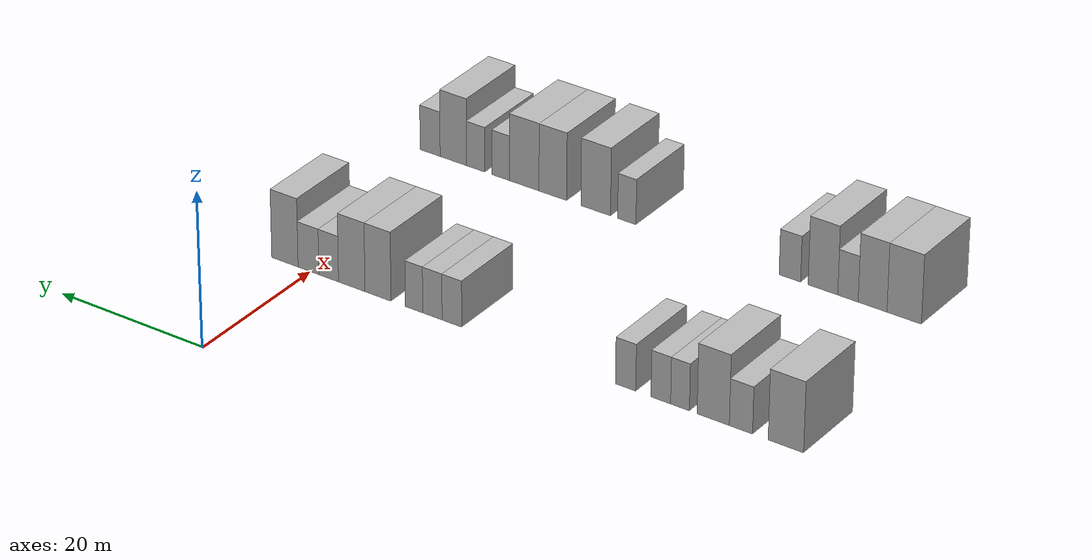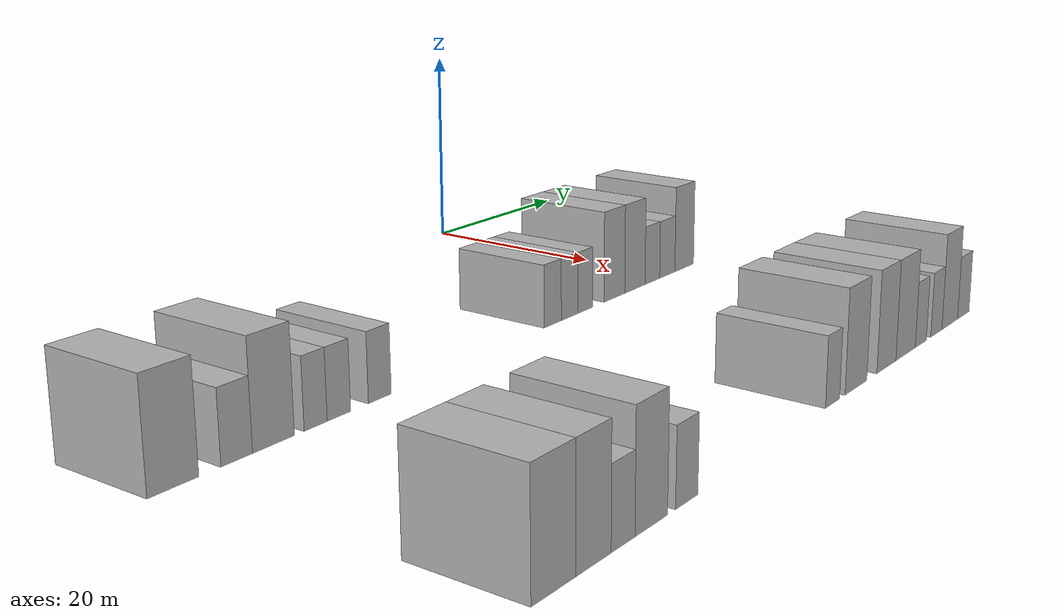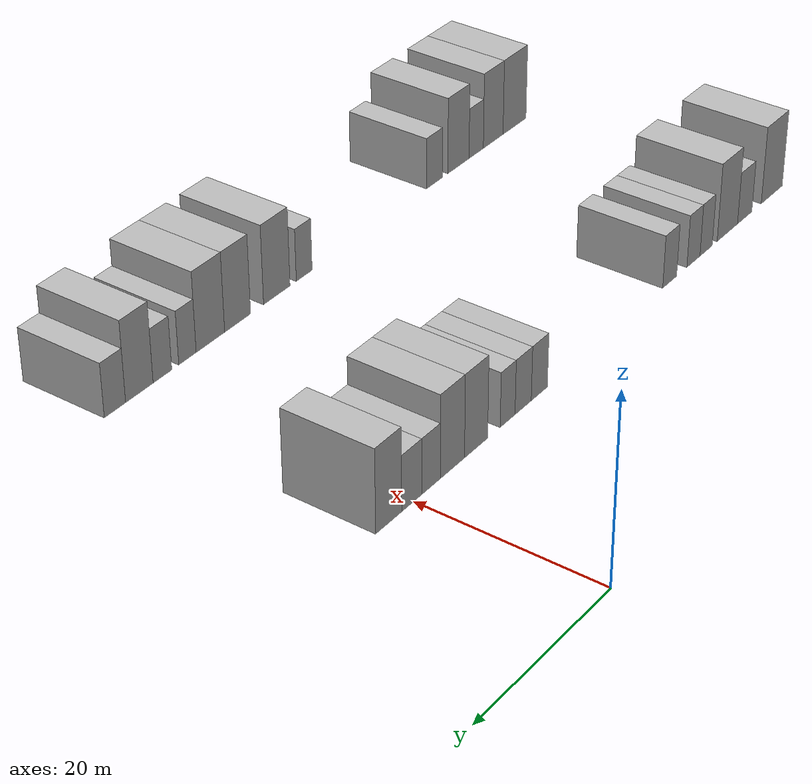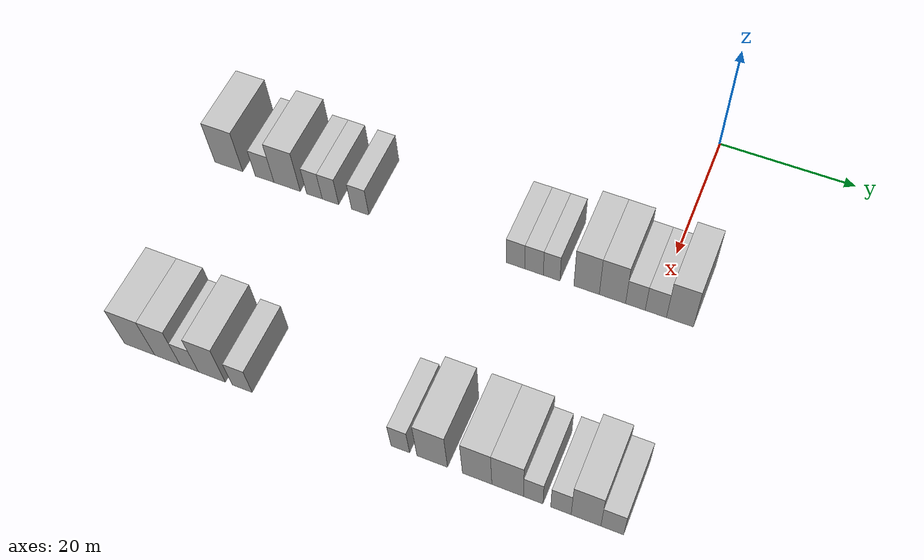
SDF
<sdf version="1.6">
 <world name="default">
  <model name="building_42">
   <static>1</static>
   <pose>25.0000 -63.8648 0 0.000000 0.000000 0.000000</pose>
   <link name="link">
    <pose>0 0 4.50 0 0 0</pose>
    <collision name="collision"><geometry><box><size>10.0000 4.4976 9.0000</size></box></geometry></collision>
    <visual name="visual">
     <cast_shadows>0</cast_shadows>
     <geometry><box><size>10.0000 4.4976 9.0000</size></box></geometry>
     <material>
      <script>
       <uri>model://HANNAS_wall/materials/scripts</uri>
       <uri>model://HANNAS_wall/materials/textures</uri>
       <name>vrc/HANNAS_wall</name>
      </script>
     </material>
    </visual>
   </link>
  </model>
  <model name="building_43">
   <static>1</static>
   <pose>25.0000 -58.1235 0 0.000000 0.000000 0.000000</pose>
   <link name="link">
    <pose>0 0 3.00 0 0 0</pose>
    <collision name="collision"><geometry><box><size>10.0000 2.9851 6.0000</size></box></geometry></collision>
    <visual name="visual">
     <cast_shadows>0</cast_shadows>
     <geometry><box><size>10.0000 2.9851 6.0000</size></box></geometry>
     <material>
      <script>
       <uri>model://HANNAS_wall/materials/scripts</uri>
       <uri>model://HANNAS_wall/materials/textures</uri>
       <name>vrc/HANNAS_wall</name>
      </script>
     </material>
    </visual>
   </link>
  </model>
  <model name="building_44">
   <static>1</static>
   <pose>25.0000 -54.5474 0 0.000000 0.000000 0.000000</pose>
   <link name="link">
    <pose>0 0 4.50 0 0 0</pose>
    <collision name="collision"><geometry><box><size>10.0000 4.1671 9.0000</size></box></geometry></collision>
    <visual name="visual">
     <cast_shadows>0</cast_shadows>
     <geometry><box><size>10.0000 4.1671 9.0000</size></box></geometry>
     <material>
      <script>
       <uri>model://HANNAS_wall/materials/scripts</uri>
       <uri>model://HANNAS_wall/materials/textures</uri>
       <name>vrc/HANNAS_wall</name>
      </script>
     </material>
    </visual>
   </link>
  </model>
  <model name="building_45">
   <static>1</static>
   <pose>25.0000 -50.2409 0 0.000000 0.000000 0.000000</pose>
   <link name="link">
    <pose>0 0 3.00 0 0 0</pose>
    <collision name="collision"><geometry><box><size>10.0000 2.4461 6.0000</size></box></geometry></collision>
    <visual name="visual">
     <cast_shadows>0</cast_shadows>
     <geometry><box><size>10.0000 2.4461 6.0000</size></box></geometry>
     <material>
      <script>
       <uri>model://HANNAS_wall/materials/scripts</uri>
       <uri>model://HANNAS_wall/materials/textures</uri>
       <name>vrc/HANNAS_wall</name>
      </script>
     </material>
    </visual>
   </link>
  </model>
  <model name="building_46">
   <static>1</static>
   <pose>25.0000 -47.7327 0 0.000000 0.000000 0.000000</pose>
   <link name="link">
    <pose>0 0 3.00 0 0 0</pose>
    <collision name="collision"><geometry><box><size>10.0000 2.5703 6.0000</size></box></geometry></collision>
    <visual name="visual">
     <cast_shadows>0</cast_shadows>
     <geometry><box><size>10.0000 2.5703 6.0000</size></box></geometry>
     <material>
      <script>
       <uri>model://HANNAS_wall/materials/scripts</uri>
       <uri>model://HANNAS_wall/materials/textures</uri>
       <name>vrc/HANNAS_wall</name>
      </script>
     </material>
    </visual>
   </link>
  </model>
  <model name="building_47">
   <static>1</static>
   <pose>25.0000 -43.1132 0 0.000000 0.000000 0.000000</pose>
   <link name="link">
    <pose>0 0 3.00 0 0 0</pose>
    <collision name="collision"><geometry><box><size>10.0000 2.6686 6.0000</size></box></geometry></collision>
    <visual name="visual">
     <cast_shadows>0</cast_shadows>
     <geometry><box><size>10.0000 2.6686 6.0000</size></box></geometry>
     <material>
      <script>
       <uri>model://HANNAS_wall/materials/scripts</uri>
       <uri>model://HANNAS_wall/materials/textures</uri>
       <name>vrc/HANNAS_wall</name>
      </script>
     </material>
    </visual>
   </link>
  </model>
  <model name="building_48">
   <static>1</static>
   <pose>25.0000 -19.7409 0 0.000000 0.000000 0.000000</pose>
   <link name="link">
    <pose>0 0 3.00 0 0 0</pose>
    <collision name="collision"><geometry><box><size>10.0000 2.6920 6.0000</size></box></geometry></collision>
    <visual name="visual">
     <cast_shadows>0</cast_shadows>
     <geometry><box><size>10.0000 2.6920 6.0000</size></box></geometry>
     <material>
      <script>
       <uri>model://HANNAS_wall/materials/scripts</uri>
       <uri>model://HANNAS_wall/materials/textures</uri>
       <name>vrc/HANNAS_wall</name>
      </script>
     </material>
    </visual>
   </link>
  </model>
  <model name="building_49">
   <static>1</static>
   <pose>25.0000 -17.0613 0 0.000000 0.000000 0.000000</pose>
   <link name="link">
    <pose>0 0 3.00 0 0 0</pose>
    <collision name="collision"><geometry><box><size>10.0000 2.6673 6.0000</size></box></geometry></collision>
    <visual name="visual">
     <cast_shadows>0</cast_shadows>
     <geometry><box><size>10.0000 2.6673 6.0000</size></box></geometry>
     <material>
      <script>
       <uri>model://HANNAS_wall/materials/scripts</uri>
       <uri>model://HANNAS_wall/materials/textures</uri>
       <name>vrc/HANNAS_wall</name>
      </script>
     </material>
    </visual>
   </link>
  </model>
  <model name="building_50">
   <static>1</static>
   <pose>25.0000 -14.5244 0 0.000000 0.000000 0.000000</pose>
   <link name="link">
    <pose>0 0 3.00 0 0 0</pose>
    <collision name="collision"><geometry><box><size>10.0000 2.4065 6.0000</size></box></geometry></collision>
    <visual name="visual">
     <cast_shadows>0</cast_shadows>
     <geometry><box><size>10.0000 2.4065 6.0000</size></box></geometry>
     <material>
      <script>
       <uri>model://HANNAS_wall/materials/scripts</uri>
       <uri>model://HANNAS_wall/materials/textures</uri>
       <name>vrc/HANNAS_wall</name>
      </script>
     </material>
    </visual>
   </link>
  </model>
  <model name="building_51">
   <static>1</static>
   <pose>25.0000 -9.5080 0 0.000000 0.000000 0.000000</pose>
   <link name="link">
    <pose>0 0 4.50 0 0 0</pose>
    <collision name="collision"><geometry><box><size>10.0000 3.6264 9.0000</size></box></geometry></collision>
    <visual name="visual">
     <cast_shadows>0</cast_shadows>
     <geometry><box><size>10.0000 3.6264 9.0000</size></box></geometry>
     <material>
      <script>
       <uri>model://HANNAS_wall/materials/scripts</uri>
       <uri>model://HANNAS_wall/materials/textures</uri>
       <name>vrc/HANNAS_wall</name>
      </script>
     </material>
    </visual>
   </link>
  </model>
  <model name="building_52">
   <static>1</static>
   <pose>25.0000 -5.8347 0 0.000000 0.000000 0.000000</pose>
   <link name="link">
    <pose>0 0 4.50 0 0 0</pose>
    <collision name="collision"><geometry><box><size>10.0000 3.7202 9.0000</size></box></geometry></collision>
    <visual name="visual">
     <cast_shadows>0</cast_shadows>
     <geometry><box><size>10.0000 3.7202 9.0000</size></box></geometry>
     <material>
      <script>
       <uri>model://HANNAS_wall/materials/scripts</uri>
       <uri>model://HANNAS_wall/materials/textures</uri>
       <name>vrc/HANNAS_wall</name>
      </script>
     </material>
    </visual>
   </link>
  </model>
  <model name="building_53">
   <static>1</static>
   <pose>25.0000 -2.5876 0 0.000000 0.000000 0.000000</pose>
   <link name="link">
    <pose>0 0 3.00 0 0 0</pose>
    <collision name="collision"><geometry><box><size>10.0000 2.7738 6.0000</size></box></geometry></collision>
    <visual name="visual">
     <cast_shadows>0</cast_shadows>
     <geometry><box><size>10.0000 2.7738 6.0000</size></box></geometry>
     <material>
      <script>
       <uri>model://HANNAS_wall/materials/scripts</uri>
       <uri>model://HANNAS_wall/materials/textures</uri>
       <name>vrc/HANNAS_wall</name>
      </script>
     </material>
    </visual>
   </link>
  </model>
  <model name="building_54">
   <static>1</static>
   <pose>25.0000 0.2778 0 0.000000 0.000000 0.000000</pose>
   <link name="link">
    <pose>0 0 3.00 0 0 0</pose>
    <collision name="collision"><geometry><box><size>10.0000 2.9571 6.0000</size></box></geometry></collision>
    <visual name="visual">
     <cast_shadows>0</cast_shadows>
     <geometry><box><size>10.0000 2.9571 6.0000</size></box></geometry>
     <material>
      <script>
       <uri>model://HANNAS_wall/materials/scripts</uri>
       <uri>model://HANNAS_wall/materials/textures</uri>
       <name>vrc/HANNAS_wall</name>
      </script>
     </material>
    </visual>
   </link>
  </model>
  <model name="building_55">
   <static>1</static>
   <pose>25.0000 3.6304 0 0.000000 0.000000 0.000000</pose>
   <link name="link">
    <pose>0 0 4.50 0 0 0</pose>
    <collision name="collision"><geometry><box><size>10.0000 3.7481 9.0000</size></box></geometry></collision>
    <visual name="visual">
     <cast_shadows>0</cast_shadows>
     <geometry><box><size>10.0000 3.7481 9.0000</size></box></geometry>
     <material>
      <script>
       <uri>model://HANNAS_wall/materials/scripts</uri>
       <uri>model://HANNAS_wall/materials/textures</uri>
       <name>vrc/HANNAS_wall</name>
      </script>
     </material>
    </visual>
   </link>
  </model>
  <model name="building_144">
   <static>1</static>
   <pose>55.0000 -60.5575 0 0.000000 0.000000 0.000000</pose>
   <link name="link">
    <pose>0 0 4.50 0 0 0</pose>
    <collision name="collision"><geometry><box><size>10.0000 4.4954 9.0000</size></box></geometry></collision>
    <visual name="visual">
     <cast_shadows>0</cast_shadows>
     <geometry><box><size>10.0000 4.4954 9.0000</size></box></geometry>
     <material>
      <script>
       <uri>model://HANNAS_wall/materials/scripts</uri>
       <uri>model://HANNAS_wall/materials/textures</uri>
       <name>vrc/HANNAS_wall</name>
      </script>
     </material>
    </visual>
   </link>
  </model>
  <model name="building_145">
   <static>1</static>
   <pose>55.0000 -56.4170 0 0.000000 0.000000 0.000000</pose>
   <link name="link">
    <pose>0 0 4.50 0 0 0</pose>
    <collision name="collision"><geometry><box><size>10.0000 3.7855 9.0000</size></box></geometry></collision>
    <visual name="visual">
     <cast_shadows>0</cast_shadows>
     <geometry><box><size>10.0000 3.7855 9.0000</size></box></geometry>
     <material>
      <script>
       <uri>model://HANNAS_wall/materials/scripts</uri>
       <uri>model://HANNAS_wall/materials/textures</uri>
       <name>vrc/HANNAS_wall</name>
      </script>
     </material>
    </visual>
   </link>
  </model>
  <model name="building_146">
   <static>1</static>
   <pose>55.0000 -53.1741 0 0.000000 0.000000 0.000000</pose>
   <link name="link">
    <pose>0 0 3.00 0 0 0</pose>
    <collision name="collision"><geometry><box><size>10.0000 2.7004 6.0000</size></box></geometry></collision>
    <visual name="visual">
     <cast_shadows>0</cast_shadows>
     <geometry><box><size>10.0000 2.7004 6.0000</size></box></geometry>
     <material>
      <script>
       <uri>model://HANNAS_wall/materials/scripts</uri>
       <uri>model://HANNAS_wall/materials/textures</uri>
       <name>vrc/HANNAS_wall</name>
      </script>
     </material>
    </visual>
   </link>
  </model>
  <model name="building_147">
   <static>1</static>
   <pose>55.0000 -49.8549 0 0.000000 0.000000 0.000000</pose>
   <link name="link">
    <pose>0 0 4.50 0 0 0</pose>
    <collision name="collision"><geometry><box><size>10.0000 3.9380 9.0000</size></box></geometry></collision>
    <visual name="visual">
     <cast_shadows>0</cast_shadows>
     <geometry><box><size>10.0000 3.9380 9.0000</size></box></geometry>
     <material>
      <script>
       <uri>model://HANNAS_wall/materials/scripts</uri>
       <uri>model://HANNAS_wall/materials/textures</uri>
       <name>vrc/HANNAS_wall</name>
      </script>
     </material>
    </visual>
   </link>
  </model>
  <model name="building_148">
   <static>1</static>
   <pose>55.0000 -45.4440 0 0.000000 0.000000 0.000000</pose>
   <link name="link">
    <pose>0 0 3.00 0 0 0</pose>
    <collision name="collision"><geometry><box><size>10.0000 2.8840 6.0000</size></box></geometry></collision>
    <visual name="visual">
     <cast_shadows>0</cast_shadows>
     <geometry><box><size>10.0000 2.8840 6.0000</size></box></geometry>
     <material>
      <script>
       <uri>model://HANNAS_wall/materials/scripts</uri>
       <uri>model://HANNAS_wall/materials/textures</uri>
       <name>vrc/HANNAS_wall</name>
      </script>
     </material>
    </visual>
   </link>
  </model>
  <model name="building_149">
   <static>1</static>
   <pose>55.0000 -23.1875 0 0.000000 0.000000 0.000000</pose>
   <link name="link">
    <pose>0 0 3.00 0 0 0</pose>
    <collision name="collision"><geometry><box><size>10.0000 2.5430 6.0000</size></box></geometry></collision>
    <visual name="visual">
     <cast_shadows>0</cast_shadows>
     <geometry><box><size>10.0000 2.5430 6.0000</size></box></geometry>
     <material>
      <script>
       <uri>model://HANNAS_wall/materials/scripts</uri>
       <uri>model://HANNAS_wall/materials/textures</uri>
       <name>vrc/HANNAS_wall</name>
      </script>
     </material>
    </visual>
   </link>
  </model>
  <model name="building_150">
   <static>1</static>
   <pose>55.0000 -18.8462 0 0.000000 0.000000 0.000000</pose>
   <link name="link">
    <pose>0 0 4.50 0 0 0</pose>
    <collision name="collision"><geometry><box><size>10.0000 4.1396 9.0000</size></box></geometry></collision>
    <visual name="visual">
     <cast_shadows>0</cast_shadows>
     <geometry><box><size>10.0000 4.1396 9.0000</size></box></geometry>
     <material>
      <script>
       <uri>model://HANNAS_wall/materials/scripts</uri>
       <uri>model://HANNAS_wall/materials/textures</uri>
       <name>vrc/HANNAS_wall</name>
      </script>
     </material>
    </visual>
   </link>
  </model>
  <model name="building_151">
   <static>1</static>
   <pose>55.0000 -12.8151 0 0.000000 0.000000 0.000000</pose>
   <link name="link">
    <pose>0 0 4.50 0 0 0</pose>
    <collision name="collision"><geometry><box><size>10.0000 3.9226 9.0000</size></box></geometry></collision>
    <visual name="visual">
     <cast_shadows>0</cast_shadows>
     <geometry><box><size>10.0000 3.9226 9.0000</size></box></geometry>
     <material>
      <script>
       <uri>model://HANNAS_wall/materials/scripts</uri>
       <uri>model://HANNAS_wall/materials/textures</uri>
       <name>vrc/HANNAS_wall</name>
      </script>
     </material>
    </visual>
   </link>
  </model>
  <model name="building_152">
   <static>1</static>
   <pose>55.0000 -8.7503 0 0.000000 0.000000 0.000000</pose>
   <link name="link">
    <pose>0 0 4.50 0 0 0</pose>
    <collision name="collision"><geometry><box><size>10.0000 4.2069 9.0000</size></box></geometry></collision>
    <visual name="visual">
     <cast_shadows>0</cast_shadows>
     <geometry><box><size>10.0000 4.2069 9.0000</size></box></geometry>
     <material>
      <script>
       <uri>model://HANNAS_wall/materials/scripts</uri>
       <uri>model://HANNAS_wall/materials/textures</uri>
       <name>vrc/HANNAS_wall</name>
      </script>
     </material>
    </visual>
   </link>
  </model>
  <model name="building_153">
   <static>1</static>
   <pose>55.0000 -5.3860 0 0.000000 0.000000 0.000000</pose>
   <link name="link">
    <pose>0 0 3.00 0 0 0</pose>
    <collision name="collision"><geometry><box><size>10.0000 2.5217 6.0000</size></box></geometry></collision>
    <visual name="visual">
     <cast_shadows>0</cast_shadows>
     <geometry><box><size>10.0000 2.5217 6.0000</size></box></geometry>
     <material>
      <script>
       <uri>model://HANNAS_wall/materials/scripts</uri>
       <uri>model://HANNAS_wall/materials/textures</uri>
       <name>vrc/HANNAS_wall</name>
      </script>
     </material>
    </visual>
   </link>
  </model>
  <model name="building_154">
   <static>1</static>
   <pose>55.0000 -1.8043 0 0.000000 0.000000 0.000000</pose>
   <link name="link">
    <pose>0 0 3.00 0 0 0</pose>
    <collision name="collision"><geometry><box><size>10.0000 2.6418 6.0000</size></box></geometry></collision>
    <visual name="visual">
     <cast_shadows>0</cast_shadows>
     <geometry><box><size>10.0000 2.6418 6.0000</size></box></geometry>
     <material>
      <script>
       <uri>model://HANNAS_wall/materials/scripts</uri>
       <uri>model://HANNAS_wall/materials/textures</uri>
       <name>vrc/HANNAS_wall</name>
      </script>
     </material>
    </visual>
   </link>
  </model>
  <model name="building_155">
   <static>1</static>
   <pose>55.0000 1.4266 0 0.000000 0.000000 0.000000</pose>
   <link name="link">
    <pose>0 0 4.50 0 0 0</pose>
    <collision name="collision"><geometry><box><size>10.0000 3.8198 9.0000</size></box></geometry></collision>
    <visual name="visual">
     <cast_shadows>0</cast_shadows>
     <geometry><box><size>10.0000 3.8198 9.0000</size></box></geometry>
     <material>
      <script>
       <uri>model://HANNAS_wall/materials/scripts</uri>
       <uri>model://HANNAS_wall/materials/textures</uri>
       <name>vrc/HANNAS_wall</name>
      </script>
     </material>
    </visual>
   </link>
  </model>
  <model name="building_156">
   <static>1</static>
   <pose>55.0000 4.7923 0 0.000000 0.000000 0.000000</pose>
   <link name="link">
    <pose>0 0 3.00 0 0 0</pose>
    <collision name="collision"><geometry><box><size>10.0000 2.9116 6.0000</size></box></geometry></collision>
    <visual name="visual">
     <cast_shadows>0</cast_shadows>
     <geometry><box><size>10.0000 2.9116 6.0000</size></box></geometry>
     <material>
      <script>
       <uri>model://HANNAS_wall/materials/scripts</uri>
       <uri>model://HANNAS_wall/materials/textures</uri>
       <name>vrc/HANNAS_wall</name>
      </script>
     </material>
    </visual>
   </link>
  </model>
 </world>
</sdf>
